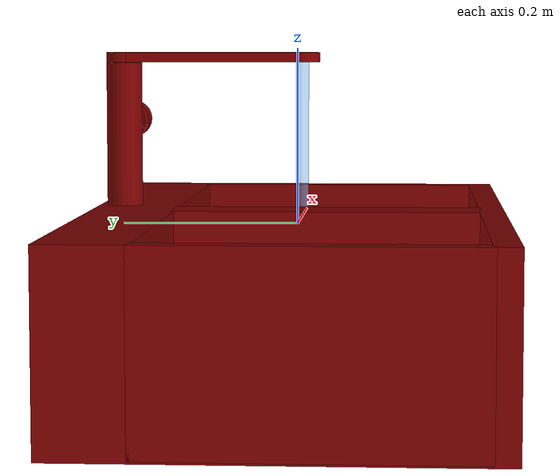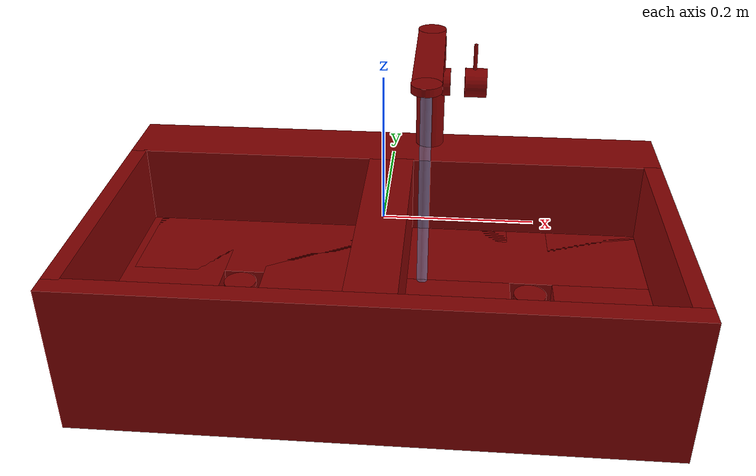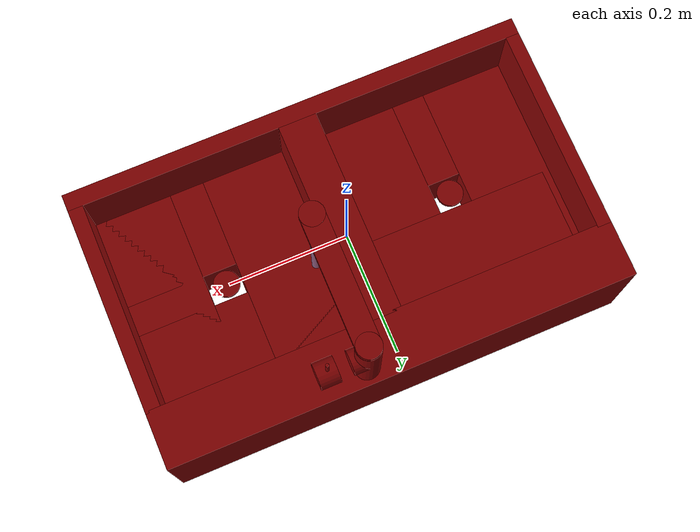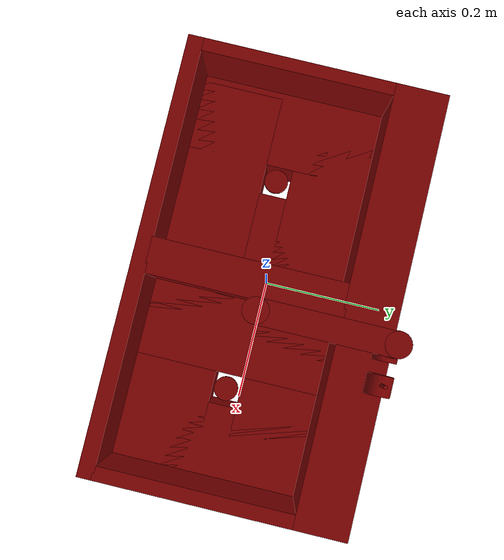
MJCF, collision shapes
<?xml version='1.0' encoding='UTF-8'?>
<mujoco model="model">
  <option timestep="0.002" gravity="0.0 0.0 -9.81"/>
  <compiler angle="radian"/>
  <asset>
    <mesh file="visuals/handle.obj" name="handle_vis"/>
    <mesh file="visuals/Body001.obj" name="Body001_vis"/>
    <mesh file="visuals/Funnel001.obj" name="Funnel001_vis"/>
    <mesh file="visuals/Funnel002.obj" name="Funnel002_vis"/>
    <mesh file="visuals/spout.obj" name="spout_vis"/>
    <texture file="visuals/T_BC001.png" name="Body001_material" type="2d"/>
    <material name="Body001_material" rgba="1 1 1 1.0" texture="Body001_material" shininess="0.1532323956489563" specular="0.4"/>
    <texture file="visuals/T_BC001.png" name="handle_material" type="2d"/>
    <material name="handle_material" rgba="1 1 1 1.0" texture="handle_material" shininess="0.6532323956489563" specular="1"/>
    <texture file="visuals/T_BC001.png" name="Funnel001_material" type="2d"/>
    <material name="Funnel001_material" rgba="1 1 1 1.0" texture="Funnel001_material" shininess="0.6532323956489563" specular="6"/>
    <texture file="visuals/T_BC001.png" name="Funnel002_material" type="2d"/>
    <material name="Funnel002_material" rgba="1 1 1 1.0" texture="Funnel002_material" shininess="0.6532323956489563" specular="6"/>
    <texture file="visuals/T_BC001.png" name="spout_material" type="2d"/>
    <material name="spout_material" rgba="1 1 1 1.0" texture="spout_material" shininess="0.6532323956489563" specular="1"/>
  </asset>
  <default>
    <default class="visual">
      <geom conaffinity="0" contype="0" group="1" type="mesh"/>
    </default>
    <default class="collision">
      <geom group="0" rgba="0.5 0 0 0.5"/>
    </default>
    <default class="spawn">
      <geom group="0" rgba="1 1 1 0.5" contype="0" conaffinity="0"/>
      <site group="0" rgba="1 1 1 0.5"/>
    </default>
    <default class="region">
      <geom group="1" conaffinity="0" contype="0" rgba="0 1 0 0"/>
    </default>
  </default>
  <worldbody>
    <body>
      <body name="object">
        <geom mesh="Body001_vis" type="mesh" solimp="0.998 0.998 0.001" solref="0.001 1" friction="0.95 0.3 0.1" class="visual" material="Body001_material"/>
        <geom class="collision" type="box" pos="0.0 0.1872427612543106 -0.0892658531665802" size="0.3932271897792816 0.04777734726667404 0.10573208332061768" quat="1.0 0.0 0.0 0.0"/>
        <geom class="collision" type="box" pos="-0.38166186213493347 -0.0331026054918766 -0.08819715678691864" size="0.011565339751541615 0.1766209453344345 0.10466339439153671" quat="1.0 0.0 0.0 0.0"/>
        <geom class="collision" type="box" pos="1.8451828509569168e-08 -0.22084710001945496 -0.0892658531665802" size="0.3932271897792816 0.01417297963052988 0.10573208332061768" quat="1.0 0.0 0.0 0.0"/>
        <geom class="collision" type="box" pos="0.00016495845920871943 -0.0331026054918766 -0.0892658531665802" size="0.03260629251599312 0.1766209453344345 0.10573208332061768" quat="1.0 0.0 0.0 0.0"/>
        <geom class="collision" type="box" pos="0.38055261969566345 -0.0331026054918766 -0.0892658531665802" size="0.01267456728965044 0.1766209453344345 0.10573208332061768" quat="1.0 0.0 0.0 0.0"/>
        <geom class="collision" type="box" pos="-0.31056836247444153 -0.0350007489323616 -0.1470508724451065" size="0.08265863358974457 0.17653101682662964 0.047947075217962265" quat="1.0 0.0 0.0 0.0"/>
        <geom class="collision" type="cylinder" pos="0.06690043210983276 0.20676618814468384 0.11448652297258377" size="0.020164191722869873 0.015516659244894981" quat="0.7071068286895752 -0.0 0.7071067690849304 0.0"/>
        <geom class="collision" type="cylinder" pos="0.05372923985123634 0.20676618814468384 0.09953746944665909" size="0.02076876163482666 0.0839449018239975" quat="1.0 0.0 0.0 0.0"/>
        <geom class="collision" type="box" pos="-0.08722325414419174 -0.0350007489323616 -0.1470508724451065" size="0.08409228175878525 0.17653101682662964 0.047947075217962265" quat="1.0 0.0 0.0 0.0"/>
        <geom class="collision" type="box" pos="0.09220532327890396 -0.0350007489323616 -0.1470508724451065" size="0.08409226685762405 0.17653101682662964 0.047947075217962265" quat="1.0 0.0 0.0 0.0"/>
        <geom class="collision" type="box" pos="0.3143121898174286 -0.03500073775649071 -0.1470508724451065" size="0.07891499996185303 0.17653046548366547 0.047947075217962265" quat="1.0 0.0 0.0 0.0"/>
        <geom class="collision" type="box" pos="0.20301726460456848 0.07738859951496124 -0.1470508724451065" size="0.17653100192546844 0.07922052592039108 0.047947075217962265" quat="1.0 0.0 0.0 0.0"/>
        <geom class="collision" type="box" pos="0.20301726460456848 -0.13358788192272186 -0.1470508724451065" size="0.17653100192546844 0.07922057062387466 0.047947075217962265" quat="1.0 0.0 0.0 0.0"/>
        <geom class="collision" type="box" pos="-0.18226125836372375 -0.13358786702156067 -0.1470508724451065" size="0.17653101682662964 0.07922063022851944 0.047947075217962265" quat="1.0 0.0 0.0 0.0"/>
        <geom class="collision" type="box" pos="-0.18226125836372375 0.07699423283338547 -0.1470508724451065" size="0.17653101682662964 0.07922068238258362 0.047947075217962265" quat="1.0 0.0 0.0 0.0"/>
        <body name="handle">
          <joint axis="1.0 0.0 0.0" pos="0.10988231003284454 0.20674970746040344 0.11420533806085587" limited="true" name="handle_joint" type="hinge" range="-0.7853981633974483 0.7853981633974483" damping="1" frictionloss="1" armature=".01" stiffness="0.05"/>
          <joint axis="0.0 1.0 0.0" pos="0.10988231003284454 0.20674970746040344 0.11420533806085587" limited="true" name="handle_temp_joint" type="hinge" range="0.0 0.3490658503988659" damping="1" frictionloss="1" armature=".01" stiffness="0.05"/>
          <geom mesh="handle_vis" type="mesh" solimp="0.998 0.998 0.001" solref="0.001 1" friction="0.95 0.3 0.1" class="visual" material="handle_material"/>
          <geom class="collision" type="cylinder" pos="0.11782275885343552 0.20676617324352264 0.15329161286354065" size="0.0028400588780641556 0.020214660093188286" quat="1.0 0.0 0.0 0.0"/>
          <geom class="collision" type="cylinder" pos="0.11971510201692581 0.20676618814468384 0.11448652297258377" size="0.021472079679369926 0.016154907643795013" quat="0.7071068286895752 -0.0 0.7071067690849304 0.0"/>
        </body>
        <body name="Funnel001">
          <joint axis="0.0 0.0 1.0" pos="-0.20003822445869446 -0.028577078133821487 -0.10281543433666229" limited="true" name="Funnel001_joint" range="0.0 0.05" type="slide" damping="0" frictionloss="0" armature="0" stiffness="0"/>
          <geom mesh="Funnel001_vis" type="mesh" solimp="0.998 0.998 0.001" solref="0.001 1" friction="0.95 0.3 0.1" class="visual" material="Funnel001_material"/>
          <geom class="collision" type="cylinder" pos="-0.20003823935985565 -0.02857707254588604 -0.10097069293260574" size="0.022458381950855255 0.003070278326049447" quat="1.0 0.0 0.0 0.0"/>
        </body>
        <body name="Funnel002">
          <joint axis="0.0 0.0 1.0" pos="0.2044074833393097 -0.028577078133821487 -0.10281543433666229" limited="true" name="Funnel002_joint" range="0.0 0.05" type="slide" damping="0" frictionloss="0" armature="0" stiffness="0"/>
          <geom mesh="Funnel002_vis" type="mesh" solimp="0.998 0.998 0.001" solref="0.001 1" friction="0.95 0.3 0.1" class="visual" material="Funnel002_material"/>
          <geom class="collision" type="cylinder" pos="0.20351660251617432 -0.02857707254588604 -0.10097069293260574" size="0.022458381950855255 0.003070278326049447" quat="1.0 0.0 0.0 0.0"/>
        </body>
        <body name="spout">
          <joint axis="0.0 0.0 1.0" pos="0.053970254957675934 0.21016517281532288 0.18886911869049072" limited="true" name="spout_joint" range="-0.7853981633974483 0.7853981633974483" type="hinge" damping="1" frictionloss="1" armature=".01" stiffness="0.05"/>
          <site type="cylinder" rgba="0.5 0.75 1 0.5" size="0.007499999832361937 0.17985022068023682" pos="0.05389139801263809 -0.00216944282874465 0.005688253324478865" name="water"/>
          <geom mesh="spout_vis" type="mesh" solimp="0.998 0.998 0.001" solref="0.001 1" friction="0.95 0.3 0.1" class="visual" material="spout_material"/>
          <geom class="collision" type="cylinder" pos="0.053729236125946045 0.20748281478881836 0.18958650529384613" size="0.02007378451526165 0.0055007669143378735" quat="1.0 0.0 0.0 0.0"/>
          <geom class="collision" type="cylinder" pos="0.053729236125946045 -0.0027401242405176163 0.18958650529384613" size="0.02007378451526165 0.0055007669143378735" quat="1.0 0.0 0.0 0.0"/>
          <geom class="collision" type="box" pos="0.05404658615589142 0.1025087833404541 0.1895374357700348" size="0.019647881388664246 0.09993328154087067 0.0054633584804832935" quat="1.0 0.0 0.0 0.0"/>
        </body>
        <geom class="region" name="reg_basin_left" type="box" pos="-0.2012353539466858 -0.03350384533405304 -0.0424298495054245" size="0.17082026600837708 0.1785973459482193 0.058896034955978394"/>
        <geom class="region" name="reg_basin_right" type="box" pos="0.20123536884784698 -0.03350384533405304 -0.0424298495054245" size="0.17082028090953827 0.1785973459482193 0.058896034955978394"/>
        <geom class="region" name="reg_main" type="box" pos="-7.450580596923828e-09 1.4901161193847656e-08 -0.0892658531665802" size="0.3932271897792816 0.23502008616924286 0.10573209822177887"/>
      </body>
    </body>
  </worldbody>
  <actuator>
    <motor name="handle_joint_actuator" joint="handle_joint" gear="10"/>
    <motor name="handle_temp_joint_actuator" joint="handle_temp_joint" gear="10"/>
    <motor name="Funnel001_joint_actuator" joint="Funnel001_joint" gear="10"/>
    <motor name="Funnel002_joint_actuator" joint="Funnel002_joint" gear="10"/>
    <motor name="spout_joint_actuator" joint="spout_joint" gear="10"/>
  </actuator>
</mujoco>
